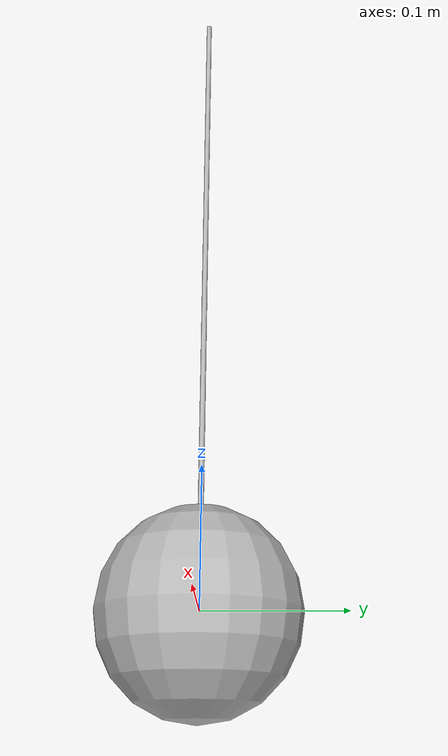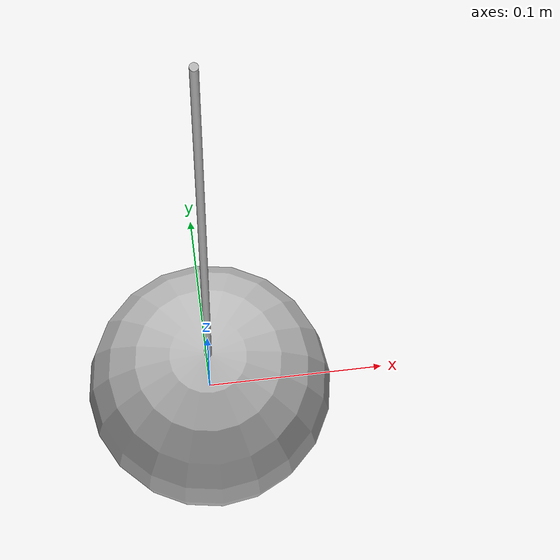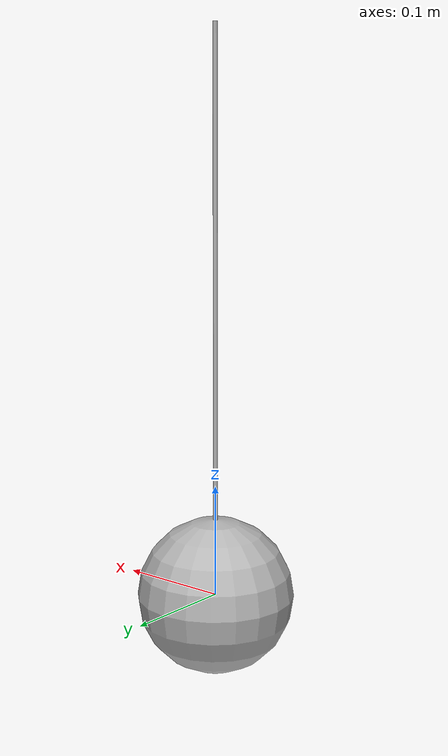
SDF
<sdf version='1.11'>
  <model name='payload'>
  <pose>0 0 0.25 3.14 0 0</pose>
    <enable_wind>1</enable_wind>
    <link name='payload_link'>
      <inertial>
        <pose>0 0 0 0 0 0</pose>
        <mass>6e-3</mass>
        <inertia>
          <ixx>1.27e-4</ixx>
          <iyy>1.27e-4</iyy>
          <izz>1.22e-8</izz>
        </inertia>
      </inertial>
      <collision name='payload_link_collision'>
        <pose>0 0 0 0 0 0</pose>
        <geometry>
          <cylinder>
            <radius>2e-3</radius>
            <length>0.500</length>
          </cylinder>
        </geometry>
        <surface>
          <contact>
            <collide_without_contact>1</collide_without_contact>
            <collide_bitmask>0x00</collide_bitmask>
          </contact>
        </surface>
      </collision>
      <visual name='payload_link_visual'>
        <pose>0 0 0 0 0 0</pose>
        <geometry>
          <cylinder>
            <radius>2e-3</radius>
            <length>0.500</length>
          </cylinder>
        </geometry>
      </visual>
    </link>
    <joint name="joint1" type="ball">
      <parent>payload_link</parent>
      <child>payload</child>
      <pose>0 0 0.25 0 0 0</pose>
    </joint>

    <link name='payload'>
    <pose>0 0 0.25 0 0 0</pose>
      <inertial>
        <pose>0 0 0 0 0 0</pose>
        <mass>0.500</mass>
        <inertia>
          <ixx>9.8e-4</ixx>
          <iyy>9.8e-4</iyy>
          <izz>9.8e-4</izz>
        </inertia>
      </inertial>
      <collision name='payload_collision'>
        <pose>0 0 0 0 0 0</pose>
        <geometry>
          <sphere>
            <radius>7e-2</radius>
          </sphere>
        </geometry>
        <surface>
          <contact>
            <collide_without_contact>1</collide_without_contact>
          </contact>
        </surface>
      </collision>
      <visual name='payload_visual'>
        <pose>0 0 0 0 0 0</pose>
        <geometry>
         <sphere>
            <radius>7e-2</radius>
          </sphere>
        </geometry>
      </visual>
    </link>
  </model>
</sdf>
